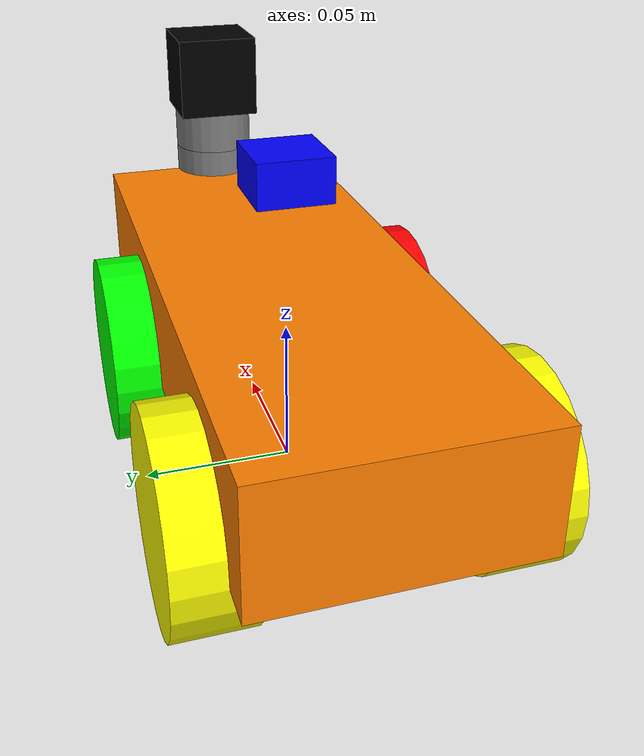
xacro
<?xml version="1.0"?>
<robot xmlns:xacro="http://www.ros.org/wiki/xacro" name="picarx_bot">

    <!-- =================== Properties =================== -->
    <!-- General properties of the robot -->
    <xacro:property name="body_length" value=".22" />
    <xacro:property name="body_width" value="0.085" />
    <xacro:property name="body_height" value="0.04" />
    <xacro:property name="body_mass" value="20.3" />
    <xacro:property name="front_wheel_width" value=".025" />
    <xacro:property name="front_wheel_diameter" value="0.065" />
    <xacro:property name="rear_wheel_width" value=".025" />
    <xacro:property name="rear_wheel_diameter" value="0.065" />
    <xacro:property name="base_link_z" value="${rear_wheel_diameter/2}" />

    <!-- =================== Materials ==================== -->
    <!-- Define the materials used in the robot -->
    <material name="Blue">
        <color rgba="0 0 1 1" />
    </material>
    <material name="Red">
        <color rgba="1 0 0 1" />
    </material>
    <material name="Green">
        <color rgba="0 1 0 1" />
    </material>
    <material name="Yellow">
        <color rgba="1 1 0 1" />
    </material>
    <material name="Gray">
        <color rgba="0.5 0.5 0.5 1" />
    </material>
    <material name="Black">
        <color rgba="0 0 0 1" />
    </material>
    <material name="Orange">
        <color rgba="1 0.5 0 1" />
    </material>

    <!-- =================== Base ========================= -->
    <!-- Add odom link and fixed joint for TF root -->
    <link name="odom" />
    <joint name="odom_base_link" type="fixed">
        <parent link="odom" />
        <child link="base_link" />
        <origin xyz="0 0 0" rpy="0 0 0" />
    </joint>

    <!-- Base link of the robot -->
    <link name="base_link">
    </link>
    <link name="chassis_link">
        <visual>
            <origin xyz="0 0 ${base_link_z + body_height/2}" rpy="0 0 0" />
            <geometry>
                <box size="${body_length} ${body_width} ${body_height}" />
            </geometry>
            <material name="Orange" />
        </visual>
        <collision>
            <origin xyz="0 0 ${base_link_z + body_height/2}" rpy="0 0 0" />
            <geometry>
                <box size="${body_length} ${body_width} ${body_height}" />
            </geometry>
        </collision>
    </link>
    <joint name="base_chassis_joint" type="fixed">
        <parent link="base_link" />
        <child link="chassis_link" />
        <origin xyz="0 0 0" rpy="0 0 0 " />
    </joint>

    <!-- =================== Steering ===================== -->
    <!-- Additional Steering Joints for Compatibility -->
    <link name="left_steering_link">
        <visual>
            <origin xyz="0 0 0" rpy="0 0 0" />
            <geometry>
                <cylinder length="0.01" radius="0.01" />
            </geometry>
            <material name="Gray" />
        </visual>
        <inertial>
            <origin xyz="0 0 0" rpy="0 0 0" />
            <mass value="0.01" />
            <inertia ixx="0.00001" ixy="0" ixz="0" iyy="0.00001" iyz="0" izz="0.00001" />
        </inertial>
    </link>
    <link name="right_steering_link">
        <visual>
            <origin xyz="0 0 0" rpy="0 0 0" />
            <geometry>
                <cylinder length="0.01" radius="0.01" />
            </geometry>
            <material name="Gray" />
        </visual>
        <inertial>
            <origin xyz="0 0 0" rpy="0 0 0" />
            <mass value="0.01" />
            <inertia ixx="0.00001" ixy="0" ixz="0" iyy="0.00001" iyz="0" izz="0.00001" />
        </inertial>
    </link>
    <joint name="left_steering_joint" type="revolute">
        <parent link="base_link" />
        <child link="left_steering_link" />
        <origin xyz="0.035 0.03 ${base_link_z}" rpy="0 0 0" />
        <axis xyz="0 0 1" />
        <limit lower="-0.56" upper="0.56" effort="10" velocity="7.5" />
    </joint>
    <joint name="right_steering_joint" type="revolute">
        <parent link="base_link" />
        <child link="right_steering_link" />
        <origin xyz="0.035 -0.03 ${base_link_z}" rpy="0 0 0" />
        <axis xyz="0 0 1" />
        <limit lower="-0.56" upper="0.56" effort="10" velocity="7.5" />
    </joint>

    <!-- =================== Wheels ======================= -->
    <!-- Define the wheels of the robot -->
    <!-- Front Wheels (fixed to steering link) -->
    <link name="left_front_wheel">
        <visual>
            <origin xyz="0 0 0" rpy="1.5708 0 0" />
            <geometry>
                <cylinder length="${front_wheel_width}" radius="${front_wheel_diameter/2}" />
            </geometry>
            <material name="Green" />
        </visual>
        <collision>
            <origin xyz="0 0 0" rpy="1.5708 0 0" />
            <geometry>
                <cylinder length="${front_wheel_width}" radius="${front_wheel_diameter/2}" />
            </geometry>
        </collision>
        <inertial>
            <origin xyz="0 0 0" rpy="0 0 0" />
            <mass value="0.2" />
            <inertia ixx="0.0002" ixy="0" ixz="0" iyy="0.0002" iyz="0" izz="0.0002" />
        </inertial>
    </link>
    <link name="right_front_wheel">
        <visual>
            <origin xyz="0 0 0" rpy="1.5708 0 0" />
            <geometry>
                <cylinder length="${front_wheel_width}" radius="${front_wheel_diameter/2}" />
            </geometry>
            <material name="Red" />
        </visual>
        <collision>
            <origin xyz="0 0 0" rpy="1.5708 0 0" />
            <geometry>
                <cylinder length="${front_wheel_width}" radius="${front_wheel_diameter/2}" />
            </geometry>
        </collision>
        <inertial>
            <origin xyz="0 0 0" rpy="0 0 0" />
            <mass value="0.2" />
            <inertia ixx="0.0002" ixy="0" ixz="0" iyy="0.0002" iyz="0" izz="0.0002" />
        </inertial>
    </link>
    <joint name="left_front_wheel_joint" type="fixed">
        <parent link="left_steering_link" />
        <child link="left_front_wheel" />
        <origin xyz="0 0.015 0" rpy="0 0 0" />
    </joint>
    <joint name="right_front_wheel_joint" type="fixed">
        <parent link="right_steering_link" />
        <child link="right_front_wheel" />
        <origin xyz="0 -0.015 0" rpy="0 0 0" />
    </joint>

    <!-- Rear Wheels (driven, continuous) -->
    <link name="left_rear_wheel">
        <visual>
            <origin xyz="0 0 0" rpy="1.5708 0 0" />
            <geometry>
                <cylinder length="${rear_wheel_width}" radius="${rear_wheel_diameter/2}" />
            </geometry>
            <material name="Yellow" />
        </visual>
        <collision>
            <origin xyz="0 0 0" rpy="1.5708 0 0" />
            <geometry>
                <cylinder length="${rear_wheel_width}" radius="${rear_wheel_diameter/2}" />
            </geometry>
        </collision>
        <inertial>
            <origin xyz="0 0 0" rpy="0 0 0" />
            <mass value="0.5" />
            <inertia ixx="0.001" ixy="0" ixz="0" iyy="0.001" iyz="0" izz="0.001" />
        </inertial>
    </link>
    <link name="right_rear_wheel">
        <visual>
            <origin xyz="0 0 0" rpy="1.5708 0 0" />
            <geometry>
                <cylinder length="${rear_wheel_width}" radius="${rear_wheel_diameter/2}" />
            </geometry>
            <material name="Yellow" />
        </visual>
        <collision>
            <origin xyz="0 0 0" rpy="1.5708 0 0" />
            <geometry>
                <cylinder length="${rear_wheel_width}" radius="${rear_wheel_diameter/2}" />
            </geometry>
        </collision>
        <inertial>
            <origin xyz="0 0 0" rpy="0 0 0" />
            <mass value="0.5" />
            <inertia ixx="0.001" ixy="0" ixz="0" iyy="0.001" iyz="0" izz="0.001" />
        </inertial>
    </link>
    <joint name="left_rear_axle" type="continuous">
        <parent link="base_link" />
        <child link="left_rear_wheel" />
        <origin xyz="-0.065 0.045 ${base_link_z}" rpy="0 0 0" />
        <axis xyz="0 1 0" />
    </joint>
    <joint name="right_rear_axle" type="continuous">
        <parent link="base_link" />
        <child link="right_rear_wheel" />
        <origin xyz="-0.065 -0.045 ${base_link_z}" rpy="0 0 0" />
        <axis xyz="0 1 0" />
    </joint>

    <!-- =================== Sensors ====================== -->
    <!-- Define the sensors on the robot -->

    <!-- IMU Sensor -->
    <link name="imu_link">
        <visual>
            <origin xyz="0 0 ${base_link_z + body_height/2}" rpy="0 0 0" />
            <geometry>
                <box size="0.025 0.025 0.015" />
            </geometry>
            <material name="Blue" />
        </visual>
        <collision>
            <origin xyz="0 0 ${base_link_z + body_height/2}" rpy="0 0 0" />
            <geometry>
                <box size="0.025 0.025 0.015" />
            </geometry>
        </collision>
        <inertial>
            <origin xyz="0 0 0" rpy="0 0 0" />
            <mass value="0.01" />
            <inertia ixx="0.00001" ixy="0" ixz="0" iyy="0.00001" iyz="0" izz="0.00001" />
        </inertial>
    </link>
    <joint name="imu_joint" type="fixed">
        <parent link="base_link" />
        <child link="imu_link" />
        <origin xyz="0 0 ${base_link_z + body_height/2}" rpy="0 0 0" />
    </joint>

    <!-- Ultrasonic Sensor -->
    <link name="ultrasonic_link">
        <visual>
            <origin xyz="0.01 0 -${base_link_z-body_height/2}" rpy="0 1.5708 0" />
            <geometry>
                <cylinder length="0.01" radius="0.01" />
            </geometry>
            <material name="Blue" />
        </visual>
        <collision>
            <origin xyz="0.01 0 -${base_link_z-body_height/2}" rpy="0 0 0" />
            <geometry>
                <cylinder length="0.01" radius="0.01" />
            </geometry>
        </collision>
        <inertial>
            <origin xyz="0 0 0" rpy="0 0 0" />
            <mass value="0.01" />
            <inertia ixx="0.00001" ixy="0" ixz="0" iyy="0.00001" iyz="0" izz="0.00001" />
        </inertial>
    </link>
    <joint name="ultrasonic_joint" type="fixed">
        <parent link="base_link" />
        <child link="ultrasonic_link" />
        <origin xyz="${body_length/2 - 0.005} 0 ${base_link_z + body_height}" rpy="0 0 0" />
    </joint>

    <!-- =================== Camera Pan-Tilt ============== -->
    <!-- Define the camera and its pan-tilt mechanism -->
    <link name="camera_pan_link">
        <visual>
            <origin xyz="0 0 0" rpy="0 0 0" />
            <geometry>
                <cylinder length="0.02" radius="0.015" />
            </geometry>
            <material name="Gray" />
        </visual>
        <collision>
            <origin xyz="0 0 0" rpy="0 0 0" />
            <geometry>
                <cylinder length="0.02" radius="0.015" />
            </geometry>
        </collision>
        <inertial>
            <origin xyz="0 0 0" rpy="0 0 0" />
            <mass value="0.02" />
            <inertia ixx="0.00002" ixy="0" ixz="0" iyy="0.00002" iyz="0" izz="0.00002" />
        </inertial>
    </link>
    <joint name="camera_pan_joint" type="revolute">
        <parent link="base_link" />
        <child link="camera_pan_link" />
        <origin xyz="${body_length/2} 0 ${base_link_z + body_height}" rpy="0 0 0" />
        <axis xyz="0 0 1" />
        <limit lower="-1.5708" upper="1.5708" effort="1" velocity="1" />
    </joint>

    <link name="camera_tilt_link">
        <visual>
            <origin xyz="0 0 0" rpy="0 0 0" />
            <geometry>
                <cylinder length="0.02" radius="0.015" />
            </geometry>
            <material name="Gray" />
        </visual>
        <collision>
            <origin xyz="0 0 0" rpy="0 0 0" />
            <geometry>
                <cylinder length="0.02" radius="0.015" />
            </geometry>
        </collision>
        <inertial>
            <origin xyz="0 0 0" rpy="0 0 0" />
            <mass value="0.02" />
            <inertia ixx="0.00002" ixy="0" ixz="0" iyy="0.00002" iyz="0" izz="0.00002" />
        </inertial>
    </link>
    <joint name="camera_tilt_joint" type="revolute">
        <parent link="camera_pan_link" />
        <child link="camera_tilt_link" />
        <origin xyz="0 0 0.02" rpy="0 0 0" />
        <axis xyz="0 -1 0" />
        <limit lower="-1.5708" upper="1.5708" effort="1" velocity="1" />
    </joint>

    <link name="camera_link">
        <visual>
            <origin xyz="0 0 0" rpy="0 1.5708 0" />
            <geometry>
                <box size="0.03 0.03 0.03" />
            </geometry>
            <material name="Black" />
        </visual>
        <collision>
            <origin xyz="0 0 0" rpy="0 1.5708 0" />
            <geometry>
                <box size="0.03 0.03 0.03" />
            </geometry>
        </collision>
        <inertial>
            <origin xyz="0 0 0" rpy="0 0 0" />
            <mass value="0.05" />
            <inertia ixx="0.00005" ixy="0" ixz="0" iyy="0.00005" iyz="0" izz="0.00005" />
        </inertial>
    </link>
    <joint name="camera_link_joint" type="fixed">
        <parent link="camera_tilt_link" />
        <child link="camera_link" />
        <origin xyz="0 0 0.02" rpy="0 0 0" />
    </joint>

    <!-- Static transforms for RViz2 visualization (for pan/tilt/camera) -->
    <!-- Remove gazebo_ros_planar_move plugins, as they are not needed for RViz2 TF tree and may
    cause confusion -->

    <!-- =================== ros2_control ================= -->
    <!-- ros2_control configuration for the robot -->
    <ros2_control name="picarx_system" type="system">
        <hardware>
            <plugin>topic_based_ros2_control/TopicBasedSystem</plugin>
        </hardware>
        <joint name="left_steering_joint">
            <command_interface name="position" />
            <state_interface name="position" />
        </joint>
        <joint name="right_steering_joint">
            <command_interface name="position" />
            <state_interface name="position" />
        </joint>
        <joint name="left_rear_axle">
            <command_interface name="velocity" />
            <state_interface name="velocity" />
            <state_interface name="position" />
        </joint>
        <joint name="right_rear_axle">
            <command_interface name="velocity" />
            <state_interface name="velocity" />
            <state_interface name="position" />
        </joint>
    </ros2_control>

    <!-- =================== Transmissions ================= -->
    <!-- Required for ros2_control to map joints to actuators -->
    <transmission name="left_steering_trans">
        <type>transmission_interface/SimpleTransmission</type>
        <joint name="left_steering_joint">
            <hardwareInterface>position</hardwareInterface>
        </joint>
        <actuator name="left_steering_motor">
            <hardwareInterface>position</hardwareInterface>
            <mechanicalReduction>1</mechanicalReduction>
        </actuator>
    </transmission>
    <transmission name="right_steering_trans">
        <type>transmission_interface/SimpleTransmission</type>
        <joint name="right_steering_joint">
            <hardwareInterface>position</hardwareInterface>
        </joint>
        <actuator name="right_steering_motor">
            <hardwareInterface>position</hardwareInterface>
            <mechanicalReduction>1</mechanicalReduction>
        </actuator>
    </transmission>
    <transmission name="left_rear_axle_trans">
        <type>transmission_interface/SimpleTransmission</type>
        <joint name="left_rear_axle">
            <hardwareInterface>velocity</hardwareInterface>
        </joint>
        <actuator name="left_rear_motor">
            <hardwareInterface>velocity</hardwareInterface>
            <mechanicalReduction>1</mechanicalReduction>
        </actuator>
    </transmission>
    <transmission name="right_rear_axle_trans">
        <type>transmission_interface/SimpleTransmission</type>
        <joint name="right_rear_axle">
            <hardwareInterface>velocity</hardwareInterface>
        </joint>
        <actuator name="right_rear_motor">
            <hardwareInterface>velocity</hardwareInterface>
            <mechanicalReduction>1</mechanicalReduction>
        </actuator>
    </transmission>

    <!-- =================== Grayscale Sensors ============ -->
    <!-- Three TCRT5000-based grayscale sensors at the front of the chassis, facing down -->
    <link name="grayscale_0_link">
        <visual>
            <origin xyz="0 0 0" rpy="0 0 0" />
            <geometry>
                <cylinder length="0.01" radius="0.005" />
            </geometry>
            <material name="Black" />
        </visual>
        <collision>
            <origin xyz="0 0 0" rpy="0 0 0" />
            <geometry>
                <cylinder length="0.01" radius="0.005" />
            </geometry>
        </collision>
        <inertial>
            <origin xyz="0 0 0" rpy="0 0 0" />
            <mass value="0.001" />
            <inertia ixx="0.000001" ixy="0" ixz="0" iyy="0.000001" iyz="0" izz="0.000001" />
        </inertial>
    </link>
    <link name="grayscale_1_link">
        <visual>
            <origin xyz="0 0 0" rpy="0 0 0" />
            <geometry>
                <cylinder length="0.01" radius="0.005" />
            </geometry>
            <material name="Black" />
        </visual>
        <collision>
            <origin xyz="0 0 0" rpy="0 0 0" />
            <geometry>
                <cylinder length="0.01" radius="0.005" />
            </geometry>
        </collision>
        <inertial>
            <origin xyz="0 0 0" rpy="0 0 0" />
            <mass value="0.001" />
            <inertia ixx="0.000001" ixy="0" ixz="0" iyy="0.000001" iyz="0" izz="0.000001" />
        </inertial>
    </link>
    <link name="grayscale_2_link">
        <visual>
            <origin xyz="0 0 0" rpy="0 0 0" />
            <geometry>
                <cylinder length="0.01" radius="0.005" />
            </geometry>
            <material name="Black" />
        </visual>
        <collision>
            <origin xyz="0 0 0" rpy="0 0 0" />
            <geometry>
                <cylinder length="0.01" radius="0.005" />
            </geometry>
        </collision>
        <inertial>
            <origin xyz="0 0 0" rpy="0 0 0" />
            <mass value="0.001" />
            <inertia ixx="0.000001" ixy="0" ixz="0" iyy="0.000001" iyz="0" izz="0.000001" />
        </inertial>
    </link>
    <joint name="grayscale_0_joint" type="fixed">
        <parent link="base_link" />
        <!-- Slightly left, at the front, just below the chassis, facing down -->
        <child link="grayscale_0_link" />
        <origin xyz="${body_length/2} 0.015 ${base_link_z + 0.005}" rpy="0 1.5708 0" />
    </joint>
    <joint name="grayscale_1_joint" type="fixed">
        <parent link="base_link" />
        <!-- Centered, at the front, just below the chassis, facing down -->
        <child link="grayscale_1_link" />
        <origin xyz="${body_length/2} 0.0 ${base_link_z + 0.005}" rpy="0 1.5708 0" />
    </joint>
    <joint name="grayscale_2_joint" type="fixed">
        <parent link="base_link" />
        <!-- Slightly right, at the front, just below the chassis, facing down -->
        <child link="grayscale_2_link" />
        <origin xyz="${body_length/2} -0.015 ${base_link_z + 0.005}" rpy="0 1.5708 0" />
    </joint>
</robot>
